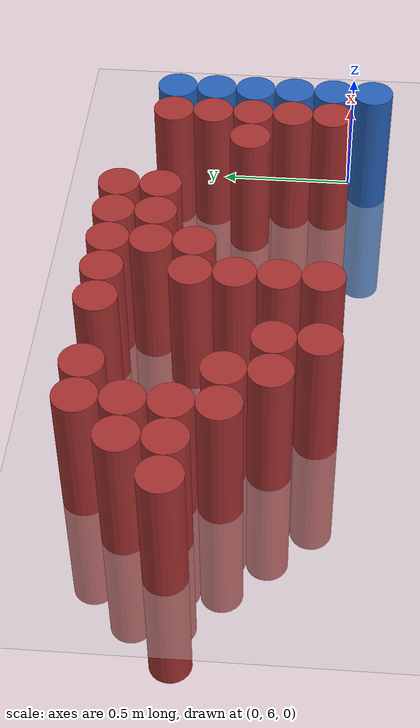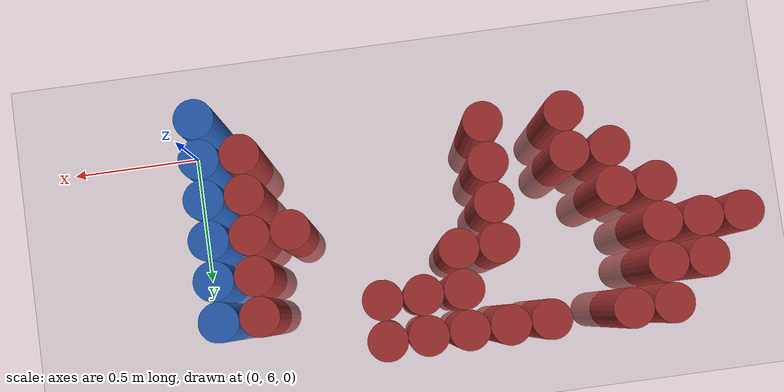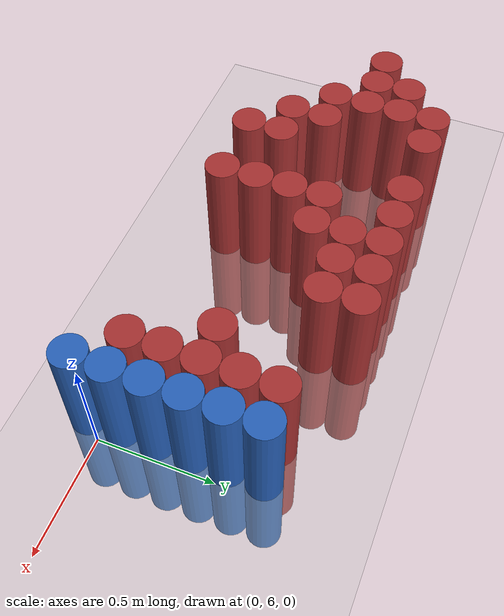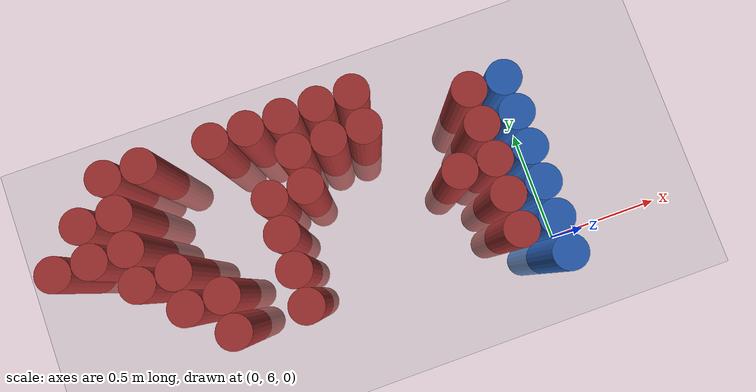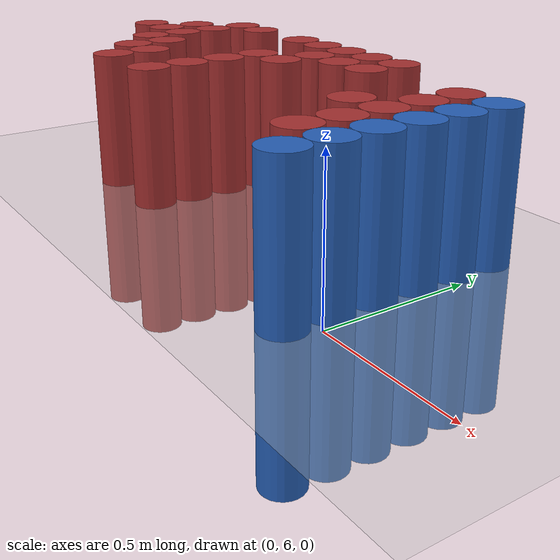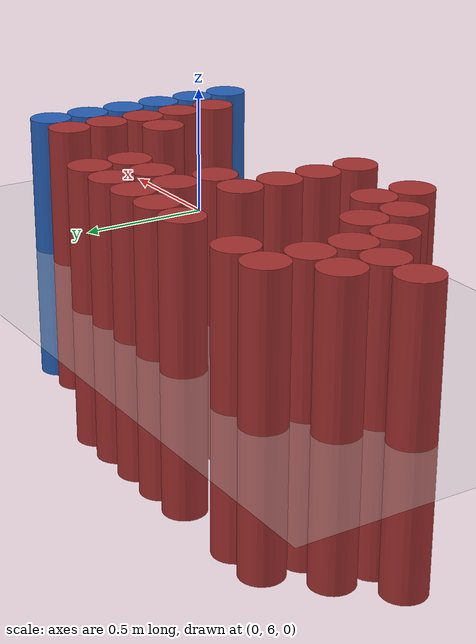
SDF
<sdf version="1.6">
 <world name="default">
  <model name="ground_plane">
   <static>1</static>
   <link name="link">
    <collision name="collision">
     <geometry><plane><normal>0 0 1</normal><size>100 100</size></plane></geometry>
     <surface><friction><ode><mu>100</mu><mu2>50</mu2></ode></friction></surface>
    </collision>
    <visual name="visual">
     <cast_shadows>0</cast_shadows>
     <geometry><plane><normal>0 0 1</normal><size>100 100</size></plane></geometry>
     <material>
      <script><uri>file://media/materials/scripts/gazebo.material</uri><name>Gazebo/Grey</name></script>
     </material>
    </visual>
   </link>
  </model>
  <model name="unit_cylinder_205">
   <static>1</static>
   <pose>-2.025000 6.525000 0.000000 0.000000 0.000000 0.000000</pose>
   <link name="link">
    <inertial>
     <mass>1</mass>
     <inertia><ixx>0.145833</ixx><ixy>0</ixy><ixz>0</ixz><iyy>0.145833</iyy><iyz>0</iyz><izz>0.125</izz></inertia>
    </inertial>
    <collision name="collision">
     <geometry><cylinder><radius>0.075000</radius><length>1</length></cylinder></geometry>
    </collision>
    <visual name="visual">
     <geometry><cylinder><radius>0.075000</radius><length>1</length></cylinder></geometry>
     <material>
      <ambient>0.648000 0.192000 0.192000 1</ambient>
      <diffuse>0.648000 0.192000 0.192000 1</diffuse>
     </material>
     <material>
      <script><name>Gazebo/Grey</name><uri>file://media/materials/scripts/gazebo.material</uri></script>
     </material>
    </visual>
    <sensor name="sensor_contact" type="contact"><contact><collision>collision</collision></contact></sensor>
   </link>
   <plugin filename="gz-sim-touchplugin-system" name="gz::sim::systems::TouchPlugin">
    <target>robot</target>
    <namespace>robot</namespace>
    <time>0.001</time>
    <enabled>true</enabled>
   </plugin>
  </model>
  <model name="unit_cylinder_208">
   <static>1</static>
   <pose>-1.875000 6.525000 0.000000 0.000000 0.000000 0.000000</pose>
   <link name="link">
    <inertial>
     <mass>1</mass>
     <inertia><ixx>0.145833</ixx><ixy>0</ixy><ixz>0</ixz><iyy>0.145833</iyy><iyz>0</iyz><izz>0.125</izz></inertia>
    </inertial>
    <collision name="collision">
     <geometry><cylinder><radius>0.075000</radius><length>1</length></cylinder></geometry>
    </collision>
    <visual name="visual">
     <geometry><cylinder><radius>0.075000</radius><length>1</length></cylinder></geometry>
     <material>
      <ambient>0.648000 0.192000 0.192000 1</ambient>
      <diffuse>0.648000 0.192000 0.192000 1</diffuse>
     </material>
     <material>
      <script><name>Gazebo/Grey</name><uri>file://media/materials/scripts/gazebo.material</uri></script>
     </material>
    </visual>
    <sensor name="sensor_contact" type="contact"><contact><collision>collision</collision></contact></sensor>
   </link>
   <plugin filename="gz-sim-touchplugin-system" name="gz::sim::systems::TouchPlugin">
    <target>robot</target>
    <namespace>robot</namespace>
    <time>0.001</time>
    <enabled>true</enabled>
   </plugin>
  </model>
  <model name="unit_cylinder_209">
   <static>1</static>
   <pose>-1.875000 6.675000 0.000000 0.000000 0.000000 0.000000</pose>
   <link name="link">
    <inertial>
     <mass>1</mass>
     <inertia><ixx>0.145833</ixx><ixy>0</ixy><ixz>0</ixz><iyy>0.145833</iyy><iyz>0</iyz><izz>0.125</izz></inertia>
    </inertial>
    <collision name="collision">
     <geometry><cylinder><radius>0.075000</radius><length>1</length></cylinder></geometry>
    </collision>
    <visual name="visual">
     <geometry><cylinder><radius>0.075000</radius><length>1</length></cylinder></geometry>
     <material>
      <ambient>0.648000 0.192000 0.192000 1</ambient>
      <diffuse>0.648000 0.192000 0.192000 1</diffuse>
     </material>
     <material>
      <script><name>Gazebo/Grey</name><uri>file://media/materials/scripts/gazebo.material</uri></script>
     </material>
    </visual>
    <sensor name="sensor_contact" type="contact"><contact><collision>collision</collision></contact></sensor>
   </link>
   <plugin filename="gz-sim-touchplugin-system" name="gz::sim::systems::TouchPlugin">
    <target>robot</target>
    <namespace>robot</namespace>
    <time>0.001</time>
    <enabled>true</enabled>
   </plugin>
  </model>
  <model name="unit_cylinder_211">
   <static>1</static>
   <pose>-1.725000 6.375000 0.000000 0.000000 0.000000 0.000000</pose>
   <link name="link">
    <inertial>
     <mass>1</mass>
     <inertia><ixx>0.145833</ixx><ixy>0</ixy><ixz>0</ixz><iyy>0.145833</iyy><iyz>0</iyz><izz>0.125</izz></inertia>
    </inertial>
    <collision name="collision">
     <geometry><cylinder><radius>0.075000</radius><length>1</length></cylinder></geometry>
    </collision>
    <visual name="visual">
     <geometry><cylinder><radius>0.075000</radius><length>1</length></cylinder></geometry>
     <material>
      <ambient>0.648000 0.192000 0.192000 1</ambient>
      <diffuse>0.648000 0.192000 0.192000 1</diffuse>
     </material>
     <material>
      <script><name>Gazebo/Grey</name><uri>file://media/materials/scripts/gazebo.material</uri></script>
     </material>
    </visual>
    <sensor name="sensor_contact" type="contact"><contact><collision>collision</collision></contact></sensor>
   </link>
   <plugin filename="gz-sim-touchplugin-system" name="gz::sim::systems::TouchPlugin">
    <target>robot</target>
    <namespace>robot</namespace>
    <time>0.001</time>
    <enabled>true</enabled>
   </plugin>
  </model>
  <model name="unit_cylinder_212">
   <static>1</static>
   <pose>-1.725000 6.525000 0.000000 0.000000 0.000000 0.000000</pose>
   <link name="link">
    <inertial>
     <mass>1</mass>
     <inertia><ixx>0.145833</ixx><ixy>0</ixy><ixz>0</ixz><iyy>0.145833</iyy><iyz>0</iyz><izz>0.125</izz></inertia>
    </inertial>
    <collision name="collision">
     <geometry><cylinder><radius>0.075000</radius><length>1</length></cylinder></geometry>
    </collision>
    <visual name="visual">
     <geometry><cylinder><radius>0.075000</radius><length>1</length></cylinder></geometry>
     <material>
      <ambient>0.648000 0.192000 0.192000 1</ambient>
      <diffuse>0.648000 0.192000 0.192000 1</diffuse>
     </material>
     <material>
      <script><name>Gazebo/Grey</name><uri>file://media/materials/scripts/gazebo.material</uri></script>
     </material>
    </visual>
    <sensor name="sensor_contact" type="contact"><contact><collision>collision</collision></contact></sensor>
   </link>
   <plugin filename="gz-sim-touchplugin-system" name="gz::sim::systems::TouchPlugin">
    <target>robot</target>
    <namespace>robot</namespace>
    <time>0.001</time>
    <enabled>true</enabled>
   </plugin>
  </model>
  <model name="unit_cylinder_213">
   <static>1</static>
   <pose>-1.725000 6.675000 0.000000 0.000000 0.000000 0.000000</pose>
   <link name="link">
    <inertial>
     <mass>1</mass>
     <inertia><ixx>0.145833</ixx><ixy>0</ixy><ixz>0</ixz><iyy>0.145833</iyy><iyz>0</iyz><izz>0.125</izz></inertia>
    </inertial>
    <collision name="collision">
     <geometry><cylinder><radius>0.075000</radius><length>1</length></cylinder></geometry>
    </collision>
    <visual name="visual">
     <geometry><cylinder><radius>0.075000</radius><length>1</length></cylinder></geometry>
     <material>
      <ambient>0.648000 0.192000 0.192000 1</ambient>
      <diffuse>0.648000 0.192000 0.192000 1</diffuse>
     </material>
     <material>
      <script><name>Gazebo/Grey</name><uri>file://media/materials/scripts/gazebo.material</uri></script>
     </material>
    </visual>
    <sensor name="sensor_contact" type="contact"><contact><collision>collision</collision></contact></sensor>
   </link>
   <plugin filename="gz-sim-touchplugin-system" name="gz::sim::systems::TouchPlugin">
    <target>robot</target>
    <namespace>robot</namespace>
    <time>0.001</time>
    <enabled>true</enabled>
   </plugin>
  </model>
  <model name="unit_cylinder_214">
   <static>1</static>
   <pose>-1.725000 6.825000 0.000000 0.000000 0.000000 0.000000</pose>
   <link name="link">
    <inertial>
     <mass>1</mass>
     <inertia><ixx>0.145833</ixx><ixy>0</ixy><ixz>0</ixz><iyy>0.145833</iyy><iyz>0</iyz><izz>0.125</izz></inertia>
    </inertial>
    <collision name="collision">
     <geometry><cylinder><radius>0.075000</radius><length>1</length></cylinder></geometry>
    </collision>
    <visual name="visual">
     <geometry><cylinder><radius>0.075000</radius><length>1</length></cylinder></geometry>
     <material>
      <ambient>0.648000 0.192000 0.192000 1</ambient>
      <diffuse>0.648000 0.192000 0.192000 1</diffuse>
     </material>
     <material>
      <script><name>Gazebo/Grey</name><uri>file://media/materials/scripts/gazebo.material</uri></script>
     </material>
    </visual>
    <sensor name="sensor_contact" type="contact"><contact><collision>collision</collision></contact></sensor>
   </link>
   <plugin filename="gz-sim-touchplugin-system" name="gz::sim::systems::TouchPlugin">
    <target>robot</target>
    <namespace>robot</namespace>
    <time>0.001</time>
    <enabled>true</enabled>
   </plugin>
  </model>
  <model name="unit_cylinder_220">
   <static>1</static>
   <pose>-1.575000 6.225000 0.000000 0.000000 0.000000 0.000000</pose>
   <link name="link">
    <inertial>
     <mass>1</mass>
     <inertia><ixx>0.145833</ixx><ixy>0</ixy><ixz>0</ixz><iyy>0.145833</iyy><iyz>0</iyz><izz>0.125</izz></inertia>
    </inertial>
    <collision name="collision">
     <geometry><cylinder><radius>0.075000</radius><length>1</length></cylinder></geometry>
    </collision>
    <visual name="visual">
     <geometry><cylinder><radius>0.075000</radius><length>1</length></cylinder></geometry>
     <material>
      <ambient>0.648000 0.192000 0.192000 1</ambient>
      <diffuse>0.648000 0.192000 0.192000 1</diffuse>
     </material>
     <material>
      <script><name>Gazebo/Grey</name><uri>file://media/materials/scripts/gazebo.material</uri></script>
     </material>
    </visual>
    <sensor name="sensor_contact" type="contact"><contact><collision>collision</collision></contact></sensor>
   </link>
   <plugin filename="gz-sim-touchplugin-system" name="gz::sim::systems::TouchPlugin">
    <target>robot</target>
    <namespace>robot</namespace>
    <time>0.001</time>
    <enabled>true</enabled>
   </plugin>
  </model>
  <model name="unit_cylinder_221">
   <static>1</static>
   <pose>-1.575000 6.375000 0.000000 0.000000 0.000000 0.000000</pose>
   <link name="link">
    <inertial>
     <mass>1</mass>
     <inertia><ixx>0.145833</ixx><ixy>0</ixy><ixz>0</ixz><iyy>0.145833</iyy><iyz>0</iyz><izz>0.125</izz></inertia>
    </inertial>
    <collision name="collision">
     <geometry><cylinder><radius>0.075000</radius><length>1</length></cylinder></geometry>
    </collision>
    <visual name="visual">
     <geometry><cylinder><radius>0.075000</radius><length>1</length></cylinder></geometry>
     <material>
      <ambient>0.648000 0.192000 0.192000 1</ambient>
      <diffuse>0.648000 0.192000 0.192000 1</diffuse>
     </material>
     <material>
      <script><name>Gazebo/Grey</name><uri>file://media/materials/scripts/gazebo.material</uri></script>
     </material>
    </visual>
    <sensor name="sensor_contact" type="contact"><contact><collision>collision</collision></contact></sensor>
   </link>
   <plugin filename="gz-sim-touchplugin-system" name="gz::sim::systems::TouchPlugin">
    <target>robot</target>
    <namespace>robot</namespace>
    <time>0.001</time>
    <enabled>true</enabled>
   </plugin>
  </model>
  <model name="unit_cylinder_222">
   <static>1</static>
   <pose>-1.575000 6.825000 0.000000 0.000000 0.000000 0.000000</pose>
   <link name="link">
    <inertial>
     <mass>1</mass>
     <inertia><ixx>0.145833</ixx><ixy>0</ixy><ixz>0</ixz><iyy>0.145833</iyy><iyz>0</iyz><izz>0.125</izz></inertia>
    </inertial>
    <collision name="collision">
     <geometry><cylinder><radius>0.075000</radius><length>1</length></cylinder></geometry>
    </collision>
    <visual name="visual">
     <geometry><cylinder><radius>0.075000</radius><length>1</length></cylinder></geometry>
     <material>
      <ambient>0.648000 0.192000 0.192000 1</ambient>
      <diffuse>0.648000 0.192000 0.192000 1</diffuse>
     </material>
     <material>
      <script><name>Gazebo/Grey</name><uri>file://media/materials/scripts/gazebo.material</uri></script>
     </material>
    </visual>
    <sensor name="sensor_contact" type="contact"><contact><collision>collision</collision></contact></sensor>
   </link>
   <plugin filename="gz-sim-touchplugin-system" name="gz::sim::systems::TouchPlugin">
    <target>robot</target>
    <namespace>robot</namespace>
    <time>0.001</time>
    <enabled>true</enabled>
   </plugin>
  </model>
  <model name="unit_cylinder_229">
   <static>1</static>
   <pose>-1.425000 6.075000 0.000000 0.000000 0.000000 0.000000</pose>
   <link name="link">
    <inertial>
     <mass>1</mass>
     <inertia><ixx>0.145833</ixx><ixy>0</ixy><ixz>0</ixz><iyy>0.145833</iyy><iyz>0</iyz><izz>0.125</izz></inertia>
    </inertial>
    <collision name="collision">
     <geometry><cylinder><radius>0.075000</radius><length>1</length></cylinder></geometry>
    </collision>
    <visual name="visual">
     <geometry><cylinder><radius>0.075000</radius><length>1</length></cylinder></geometry>
     <material>
      <ambient>0.648000 0.192000 0.192000 1</ambient>
      <diffuse>0.648000 0.192000 0.192000 1</diffuse>
     </material>
     <material>
      <script><name>Gazebo/Grey</name><uri>file://media/materials/scripts/gazebo.material</uri></script>
     </material>
    </visual>
    <sensor name="sensor_contact" type="contact"><contact><collision>collision</collision></contact></sensor>
   </link>
   <plugin filename="gz-sim-touchplugin-system" name="gz::sim::systems::TouchPlugin">
    <target>robot</target>
    <namespace>robot</namespace>
    <time>0.001</time>
    <enabled>true</enabled>
   </plugin>
  </model>
  <model name="unit_cylinder_230">
   <static>1</static>
   <pose>-1.425000 6.225000 0.000000 0.000000 0.000000 0.000000</pose>
   <link name="link">
    <inertial>
     <mass>1</mass>
     <inertia><ixx>0.145833</ixx><ixy>0</ixy><ixz>0</ixz><iyy>0.145833</iyy><iyz>0</iyz><izz>0.125</izz></inertia>
    </inertial>
    <collision name="collision">
     <geometry><cylinder><radius>0.075000</radius><length>1</length></cylinder></geometry>
    </collision>
    <visual name="visual">
     <geometry><cylinder><radius>0.075000</radius><length>1</length></cylinder></geometry>
     <material>
      <ambient>0.648000 0.192000 0.192000 1</ambient>
      <diffuse>0.648000 0.192000 0.192000 1</diffuse>
     </material>
     <material>
      <script><name>Gazebo/Grey</name><uri>file://media/materials/scripts/gazebo.material</uri></script>
     </material>
    </visual>
    <sensor name="sensor_contact" type="contact"><contact><collision>collision</collision></contact></sensor>
   </link>
   <plugin filename="gz-sim-touchplugin-system" name="gz::sim::systems::TouchPlugin">
    <target>robot</target>
    <namespace>robot</namespace>
    <time>0.001</time>
    <enabled>true</enabled>
   </plugin>
  </model>
  <model name="unit_cylinder_238">
   <static>1</static>
   <pose>-1.275000 6.825000 0.000000 0.000000 0.000000 0.000000</pose>
   <link name="link">
    <inertial>
     <mass>1</mass>
     <inertia><ixx>0.145833</ixx><ixy>0</ixy><ixz>0</ixz><iyy>0.145833</iyy><iyz>0</iyz><izz>0.125</izz></inertia>
    </inertial>
    <collision name="collision">
     <geometry><cylinder><radius>0.075000</radius><length>1</length></cylinder></geometry>
    </collision>
    <visual name="visual">
     <geometry><cylinder><radius>0.075000</radius><length>1</length></cylinder></geometry>
     <material>
      <ambient>0.648000 0.192000 0.192000 1</ambient>
      <diffuse>0.648000 0.192000 0.192000 1</diffuse>
     </material>
     <material>
      <script><name>Gazebo/Grey</name><uri>file://media/materials/scripts/gazebo.material</uri></script>
     </material>
    </visual>
    <sensor name="sensor_contact" type="contact"><contact><collision>collision</collision></contact></sensor>
   </link>
   <plugin filename="gz-sim-touchplugin-system" name="gz::sim::systems::TouchPlugin">
    <target>robot</target>
    <namespace>robot</namespace>
    <time>0.001</time>
    <enabled>true</enabled>
   </plugin>
  </model>
  <model name="unit_cylinder_245">
   <static>1</static>
   <pose>-1.125000 6.075000 0.000000 0.000000 0.000000 0.000000</pose>
   <link name="link">
    <inertial>
     <mass>1</mass>
     <inertia><ixx>0.145833</ixx><ixy>0</ixy><ixz>0</ixz><iyy>0.145833</iyy><iyz>0</iyz><izz>0.125</izz></inertia>
    </inertial>
    <collision name="collision">
     <geometry><cylinder><radius>0.075000</radius><length>1</length></cylinder></geometry>
    </collision>
    <visual name="visual">
     <geometry><cylinder><radius>0.075000</radius><length>1</length></cylinder></geometry>
     <material>
      <ambient>0.648000 0.192000 0.192000 1</ambient>
      <diffuse>0.648000 0.192000 0.192000 1</diffuse>
     </material>
     <material>
      <script><name>Gazebo/Grey</name><uri>file://media/materials/scripts/gazebo.material</uri></script>
     </material>
    </visual>
    <sensor name="sensor_contact" type="contact"><contact><collision>collision</collision></contact></sensor>
   </link>
   <plugin filename="gz-sim-touchplugin-system" name="gz::sim::systems::TouchPlugin">
    <target>robot</target>
    <namespace>robot</namespace>
    <time>0.001</time>
    <enabled>true</enabled>
   </plugin>
  </model>
  <model name="unit_cylinder_246">
   <static>1</static>
   <pose>-1.125000 6.225000 0.000000 0.000000 0.000000 0.000000</pose>
   <link name="link">
    <inertial>
     <mass>1</mass>
     <inertia><ixx>0.145833</ixx><ixy>0</ixy><ixz>0</ixz><iyy>0.145833</iyy><iyz>0</iyz><izz>0.125</izz></inertia>
    </inertial>
    <collision name="collision">
     <geometry><cylinder><radius>0.075000</radius><length>1</length></cylinder></geometry>
    </collision>
    <visual name="visual">
     <geometry><cylinder><radius>0.075000</radius><length>1</length></cylinder></geometry>
     <material>
      <ambient>0.648000 0.192000 0.192000 1</ambient>
      <diffuse>0.648000 0.192000 0.192000 1</diffuse>
     </material>
     <material>
      <script><name>Gazebo/Grey</name><uri>file://media/materials/scripts/gazebo.material</uri></script>
     </material>
    </visual>
    <sensor name="sensor_contact" type="contact"><contact><collision>collision</collision></contact></sensor>
   </link>
   <plugin filename="gz-sim-touchplugin-system" name="gz::sim::systems::TouchPlugin">
    <target>robot</target>
    <namespace>robot</namespace>
    <time>0.001</time>
    <enabled>true</enabled>
   </plugin>
  </model>
  <model name="unit_cylinder_247">
   <static>1</static>
   <pose>-1.125000 6.375000 0.000000 0.000000 0.000000 0.000000</pose>
   <link name="link">
    <inertial>
     <mass>1</mass>
     <inertia><ixx>0.145833</ixx><ixy>0</ixy><ixz>0</ixz><iyy>0.145833</iyy><iyz>0</iyz><izz>0.125</izz></inertia>
    </inertial>
    <collision name="collision">
     <geometry><cylinder><radius>0.075000</radius><length>1</length></cylinder></geometry>
    </collision>
    <visual name="visual">
     <geometry><cylinder><radius>0.075000</radius><length>1</length></cylinder></geometry>
     <material>
      <ambient>0.648000 0.192000 0.192000 1</ambient>
      <diffuse>0.648000 0.192000 0.192000 1</diffuse>
     </material>
     <material>
      <script><name>Gazebo/Grey</name><uri>file://media/materials/scripts/gazebo.material</uri></script>
     </material>
    </visual>
    <sensor name="sensor_contact" type="contact"><contact><collision>collision</collision></contact></sensor>
   </link>
   <plugin filename="gz-sim-touchplugin-system" name="gz::sim::systems::TouchPlugin">
    <target>robot</target>
    <namespace>robot</namespace>
    <time>0.001</time>
    <enabled>true</enabled>
   </plugin>
  </model>
  <model name="unit_cylinder_248">
   <static>1</static>
   <pose>-1.125000 6.525000 0.000000 0.000000 0.000000 0.000000</pose>
   <link name="link">
    <inertial>
     <mass>1</mass>
     <inertia><ixx>0.145833</ixx><ixy>0</ixy><ixz>0</ixz><iyy>0.145833</iyy><iyz>0</iyz><izz>0.125</izz></inertia>
    </inertial>
    <collision name="collision">
     <geometry><cylinder><radius>0.075000</radius><length>1</length></cylinder></geometry>
    </collision>
    <visual name="visual">
     <geometry><cylinder><radius>0.075000</radius><length>1</length></cylinder></geometry>
     <material>
      <ambient>0.648000 0.192000 0.192000 1</ambient>
      <diffuse>0.648000 0.192000 0.192000 1</diffuse>
     </material>
     <material>
      <script><name>Gazebo/Grey</name><uri>file://media/materials/scripts/gazebo.material</uri></script>
     </material>
    </visual>
    <sensor name="sensor_contact" type="contact"><contact><collision>collision</collision></contact></sensor>
   </link>
   <plugin filename="gz-sim-touchplugin-system" name="gz::sim::systems::TouchPlugin">
    <target>robot</target>
    <namespace>robot</namespace>
    <time>0.001</time>
    <enabled>true</enabled>
   </plugin>
  </model>
  <model name="unit_cylinder_249">
   <static>1</static>
   <pose>-1.125000 6.825000 0.000000 0.000000 0.000000 0.000000</pose>
   <link name="link">
    <inertial>
     <mass>1</mass>
     <inertia><ixx>0.145833</ixx><ixy>0</ixy><ixz>0</ixz><iyy>0.145833</iyy><iyz>0</iyz><izz>0.125</izz></inertia>
    </inertial>
    <collision name="collision">
     <geometry><cylinder><radius>0.075000</radius><length>1</length></cylinder></geometry>
    </collision>
    <visual name="visual">
     <geometry><cylinder><radius>0.075000</radius><length>1</length></cylinder></geometry>
     <material>
      <ambient>0.648000 0.192000 0.192000 1</ambient>
      <diffuse>0.648000 0.192000 0.192000 1</diffuse>
     </material>
     <material>
      <script><name>Gazebo/Grey</name><uri>file://media/materials/scripts/gazebo.material</uri></script>
     </material>
    </visual>
    <sensor name="sensor_contact" type="contact"><contact><collision>collision</collision></contact></sensor>
   </link>
   <plugin filename="gz-sim-touchplugin-system" name="gz::sim::systems::TouchPlugin">
    <target>robot</target>
    <namespace>robot</namespace>
    <time>0.001</time>
    <enabled>true</enabled>
   </plugin>
  </model>
  <model name="unit_cylinder_254">
   <static>1</static>
   <pose>-0.975000 6.525000 0.000000 0.000000 0.000000 0.000000</pose>
   <link name="link">
    <inertial>
     <mass>1</mass>
     <inertia><ixx>0.145833</ixx><ixy>0</ixy><ixz>0</ixz><iyy>0.145833</iyy><iyz>0</iyz><izz>0.125</izz></inertia>
    </inertial>
    <collision name="collision">
     <geometry><cylinder><radius>0.075000</radius><length>1</length></cylinder></geometry>
    </collision>
    <visual name="visual">
     <geometry><cylinder><radius>0.075000</radius><length>1</length></cylinder></geometry>
     <material>
      <ambient>0.648000 0.192000 0.192000 1</ambient>
      <diffuse>0.648000 0.192000 0.192000 1</diffuse>
     </material>
     <material>
      <script><name>Gazebo/Grey</name><uri>file://media/materials/scripts/gazebo.material</uri></script>
     </material>
    </visual>
    <sensor name="sensor_contact" type="contact"><contact><collision>collision</collision></contact></sensor>
   </link>
   <plugin filename="gz-sim-touchplugin-system" name="gz::sim::systems::TouchPlugin">
    <target>robot</target>
    <namespace>robot</namespace>
    <time>0.001</time>
    <enabled>true</enabled>
   </plugin>
  </model>
  <model name="unit_cylinder_255">
   <static>1</static>
   <pose>-0.975000 6.675000 0.000000 0.000000 0.000000 0.000000</pose>
   <link name="link">
    <inertial>
     <mass>1</mass>
     <inertia><ixx>0.145833</ixx><ixy>0</ixy><ixz>0</ixz><iyy>0.145833</iyy><iyz>0</iyz><izz>0.125</izz></inertia>
    </inertial>
    <collision name="collision">
     <geometry><cylinder><radius>0.075000</radius><length>1</length></cylinder></geometry>
    </collision>
    <visual name="visual">
     <geometry><cylinder><radius>0.075000</radius><length>1</length></cylinder></geometry>
     <material>
      <ambient>0.648000 0.192000 0.192000 1</ambient>
      <diffuse>0.648000 0.192000 0.192000 1</diffuse>
     </material>
     <material>
      <script><name>Gazebo/Grey</name><uri>file://media/materials/scripts/gazebo.material</uri></script>
     </material>
    </visual>
    <sensor name="sensor_contact" type="contact"><contact><collision>collision</collision></contact></sensor>
   </link>
   <plugin filename="gz-sim-touchplugin-system" name="gz::sim::systems::TouchPlugin">
    <target>robot</target>
    <namespace>robot</namespace>
    <time>0.001</time>
    <enabled>true</enabled>
   </plugin>
  </model>
  <model name="unit_cylinder_256">
   <static>1</static>
   <pose>-0.975000 6.825000 0.000000 0.000000 0.000000 0.000000</pose>
   <link name="link">
    <inertial>
     <mass>1</mass>
     <inertia><ixx>0.145833</ixx><ixy>0</ixy><ixz>0</ixz><iyy>0.145833</iyy><iyz>0</iyz><izz>0.125</izz></inertia>
    </inertial>
    <collision name="collision">
     <geometry><cylinder><radius>0.075000</radius><length>1</length></cylinder></geometry>
    </collision>
    <visual name="visual">
     <geometry><cylinder><radius>0.075000</radius><length>1</length></cylinder></geometry>
     <material>
      <ambient>0.648000 0.192000 0.192000 1</ambient>
      <diffuse>0.648000 0.192000 0.192000 1</diffuse>
     </material>
     <material>
      <script><name>Gazebo/Grey</name><uri>file://media/materials/scripts/gazebo.material</uri></script>
     </material>
    </visual>
    <sensor name="sensor_contact" type="contact"><contact><collision>collision</collision></contact></sensor>
   </link>
   <plugin filename="gz-sim-touchplugin-system" name="gz::sim::systems::TouchPlugin">
    <target>robot</target>
    <namespace>robot</namespace>
    <time>0.001</time>
    <enabled>true</enabled>
   </plugin>
  </model>
  <model name="unit_cylinder_262">
   <static>1</static>
   <pose>-0.825000 6.675000 0.000000 0.000000 0.000000 0.000000</pose>
   <link name="link">
    <inertial>
     <mass>1</mass>
     <inertia><ixx>0.145833</ixx><ixy>0</ixy><ixz>0</ixz><iyy>0.145833</iyy><iyz>0</iyz><izz>0.125</izz></inertia>
    </inertial>
    <collision name="collision">
     <geometry><cylinder><radius>0.075000</radius><length>1</length></cylinder></geometry>
    </collision>
    <visual name="visual">
     <geometry><cylinder><radius>0.075000</radius><length>1</length></cylinder></geometry>
     <material>
      <ambient>0.648000 0.192000 0.192000 1</ambient>
      <diffuse>0.648000 0.192000 0.192000 1</diffuse>
     </material>
     <material>
      <script><name>Gazebo/Grey</name><uri>file://media/materials/scripts/gazebo.material</uri></script>
     </material>
    </visual>
    <sensor name="sensor_contact" type="contact"><contact><collision>collision</collision></contact></sensor>
   </link>
   <plugin filename="gz-sim-touchplugin-system" name="gz::sim::systems::TouchPlugin">
    <target>robot</target>
    <namespace>robot</namespace>
    <time>0.001</time>
    <enabled>true</enabled>
   </plugin>
  </model>
  <model name="unit_cylinder_263">
   <static>1</static>
   <pose>-0.825000 6.825000 0.000000 0.000000 0.000000 0.000000</pose>
   <link name="link">
    <inertial>
     <mass>1</mass>
     <inertia><ixx>0.145833</ixx><ixy>0</ixy><ixz>0</ixz><iyy>0.145833</iyy><iyz>0</iyz><izz>0.125</izz></inertia>
    </inertial>
    <collision name="collision">
     <geometry><cylinder><radius>0.075000</radius><length>1</length></cylinder></geometry>
    </collision>
    <visual name="visual">
     <geometry><cylinder><radius>0.075000</radius><length>1</length></cylinder></geometry>
     <material>
      <ambient>0.648000 0.192000 0.192000 1</ambient>
      <diffuse>0.648000 0.192000 0.192000 1</diffuse>
     </material>
     <material>
      <script><name>Gazebo/Grey</name><uri>file://media/materials/scripts/gazebo.material</uri></script>
     </material>
    </visual>
    <sensor name="sensor_contact" type="contact"><contact><collision>collision</collision></contact></sensor>
   </link>
   <plugin filename="gz-sim-touchplugin-system" name="gz::sim::systems::TouchPlugin">
    <target>robot</target>
    <namespace>robot</namespace>
    <time>0.001</time>
    <enabled>true</enabled>
   </plugin>
  </model>
  <model name="unit_cylinder_266">
   <static>1</static>
   <pose>-0.675000 6.675000 0.000000 0.000000 0.000000 0.000000</pose>
   <link name="link">
    <inertial>
     <mass>1</mass>
     <inertia><ixx>0.145833</ixx><ixy>0</ixy><ixz>0</ixz><iyy>0.145833</iyy><iyz>0</iyz><izz>0.125</izz></inertia>
    </inertial>
    <collision name="collision">
     <geometry><cylinder><radius>0.075000</radius><length>1</length></cylinder></geometry>
    </collision>
    <visual name="visual">
     <geometry><cylinder><radius>0.075000</radius><length>1</length></cylinder></geometry>
     <material>
      <ambient>0.648000 0.192000 0.192000 1</ambient>
      <diffuse>0.648000 0.192000 0.192000 1</diffuse>
     </material>
     <material>
      <script><name>Gazebo/Grey</name><uri>file://media/materials/scripts/gazebo.material</uri></script>
     </material>
    </visual>
    <sensor name="sensor_contact" type="contact"><contact><collision>collision</collision></contact></sensor>
   </link>
   <plugin filename="gz-sim-touchplugin-system" name="gz::sim::systems::TouchPlugin">
    <target>robot</target>
    <namespace>robot</namespace>
    <time>0.001</time>
    <enabled>true</enabled>
   </plugin>
  </model>
  <model name="unit_cylinder_267">
   <static>1</static>
   <pose>-0.675000 6.825000 0.000000 0.000000 0.000000 0.000000</pose>
   <link name="link">
    <inertial>
     <mass>1</mass>
     <inertia><ixx>0.145833</ixx><ixy>0</ixy><ixz>0</ixz><iyy>0.145833</iyy><iyz>0</iyz><izz>0.125</izz></inertia>
    </inertial>
    <collision name="collision">
     <geometry><cylinder><radius>0.075000</radius><length>1</length></cylinder></geometry>
    </collision>
    <visual name="visual">
     <geometry><cylinder><radius>0.075000</radius><length>1</length></cylinder></geometry>
     <material>
      <ambient>0.648000 0.192000 0.192000 1</ambient>
      <diffuse>0.648000 0.192000 0.192000 1</diffuse>
     </material>
     <material>
      <script><name>Gazebo/Grey</name><uri>file://media/materials/scripts/gazebo.material</uri></script>
     </material>
    </visual>
    <sensor name="sensor_contact" type="contact"><contact><collision>collision</collision></contact></sensor>
   </link>
   <plugin filename="gz-sim-touchplugin-system" name="gz::sim::systems::TouchPlugin">
    <target>robot</target>
    <namespace>robot</namespace>
    <time>0.001</time>
    <enabled>true</enabled>
   </plugin>
  </model>
  <model name="unit_cylinder_278">
   <static>1</static>
   <pose>-0.375000 6.375000 0.000000 0.000000 0.000000 0.000000</pose>
   <link name="link">
    <inertial>
     <mass>1</mass>
     <inertia><ixx>0.145833</ixx><ixy>0</ixy><ixz>0</ixz><iyy>0.145833</iyy><iyz>0</iyz><izz>0.125</izz></inertia>
    </inertial>
    <collision name="collision">
     <geometry><cylinder><radius>0.075000</radius><length>1</length></cylinder></geometry>
    </collision>
    <visual name="visual">
     <geometry><cylinder><radius>0.075000</radius><length>1</length></cylinder></geometry>
     <material>
      <ambient>0.648000 0.192000 0.192000 1</ambient>
      <diffuse>0.648000 0.192000 0.192000 1</diffuse>
     </material>
     <material>
      <script><name>Gazebo/Grey</name><uri>file://media/materials/scripts/gazebo.material</uri></script>
     </material>
    </visual>
    <sensor name="sensor_contact" type="contact"><contact><collision>collision</collision></contact></sensor>
   </link>
   <plugin filename="gz-sim-touchplugin-system" name="gz::sim::systems::TouchPlugin">
    <target>robot</target>
    <namespace>robot</namespace>
    <time>0.001</time>
    <enabled>true</enabled>
   </plugin>
  </model>
  <model name="unit_cylinder_288">
   <static>1</static>
   <pose>-0.225000 6.075000 0.000000 0.000000 0.000000 0.000000</pose>
   <link name="link">
    <inertial>
     <mass>1</mass>
     <inertia><ixx>0.145833</ixx><ixy>0</ixy><ixz>0</ixz><iyy>0.145833</iyy><iyz>0</iyz><izz>0.125</izz></inertia>
    </inertial>
    <collision name="collision">
     <geometry><cylinder><radius>0.075000</radius><length>1</length></cylinder></geometry>
    </collision>
    <visual name="visual">
     <geometry><cylinder><radius>0.075000</radius><length>1</length></cylinder></geometry>
     <material>
      <ambient>0.648000 0.192000 0.192000 1</ambient>
      <diffuse>0.648000 0.192000 0.192000 1</diffuse>
     </material>
     <material>
      <script><name>Gazebo/Grey</name><uri>file://media/materials/scripts/gazebo.material</uri></script>
     </material>
    </visual>
    <sensor name="sensor_contact" type="contact"><contact><collision>collision</collision></contact></sensor>
   </link>
   <plugin filename="gz-sim-touchplugin-system" name="gz::sim::systems::TouchPlugin">
    <target>robot</target>
    <namespace>robot</namespace>
    <time>0.001</time>
    <enabled>true</enabled>
   </plugin>
  </model>
  <model name="unit_cylinder_289">
   <static>1</static>
   <pose>-0.225000 6.225000 0.000000 0.000000 0.000000 0.000000</pose>
   <link name="link">
    <inertial>
     <mass>1</mass>
     <inertia><ixx>0.145833</ixx><ixy>0</ixy><ixz>0</ixz><iyy>0.145833</iyy><iyz>0</iyz><izz>0.125</izz></inertia>
    </inertial>
    <collision name="collision">
     <geometry><cylinder><radius>0.075000</radius><length>1</length></cylinder></geometry>
    </collision>
    <visual name="visual">
     <geometry><cylinder><radius>0.075000</radius><length>1</length></cylinder></geometry>
     <material>
      <ambient>0.648000 0.192000 0.192000 1</ambient>
      <diffuse>0.648000 0.192000 0.192000 1</diffuse>
     </material>
     <material>
      <script><name>Gazebo/Grey</name><uri>file://media/materials/scripts/gazebo.material</uri></script>
     </material>
    </visual>
    <sensor name="sensor_contact" type="contact"><contact><collision>collision</collision></contact></sensor>
   </link>
   <plugin filename="gz-sim-touchplugin-system" name="gz::sim::systems::TouchPlugin">
    <target>robot</target>
    <namespace>robot</namespace>
    <time>0.001</time>
    <enabled>true</enabled>
   </plugin>
  </model>
  <model name="unit_cylinder_290">
   <static>1</static>
   <pose>-0.225000 6.375000 0.000000 0.000000 0.000000 0.000000</pose>
   <link name="link">
    <inertial>
     <mass>1</mass>
     <inertia><ixx>0.145833</ixx><ixy>0</ixy><ixz>0</ixz><iyy>0.145833</iyy><iyz>0</iyz><izz>0.125</izz></inertia>
    </inertial>
    <collision name="collision">
     <geometry><cylinder><radius>0.075000</radius><length>1</length></cylinder></geometry>
    </collision>
    <visual name="visual">
     <geometry><cylinder><radius>0.075000</radius><length>1</length></cylinder></geometry>
     <material>
      <ambient>0.648000 0.192000 0.192000 1</ambient>
      <diffuse>0.648000 0.192000 0.192000 1</diffuse>
     </material>
     <material>
      <script><name>Gazebo/Grey</name><uri>file://media/materials/scripts/gazebo.material</uri></script>
     </material>
    </visual>
    <sensor name="sensor_contact" type="contact"><contact><collision>collision</collision></contact></sensor>
   </link>
   <plugin filename="gz-sim-touchplugin-system" name="gz::sim::systems::TouchPlugin">
    <target>robot</target>
    <namespace>robot</namespace>
    <time>0.001</time>
    <enabled>true</enabled>
   </plugin>
  </model>
  <model name="unit_cylinder_291">
   <static>1</static>
   <pose>-0.225000 6.525000 0.000000 0.000000 0.000000 0.000000</pose>
   <link name="link">
    <inertial>
     <mass>1</mass>
     <inertia><ixx>0.145833</ixx><ixy>0</ixy><ixz>0</ixz><iyy>0.145833</iyy><iyz>0</iyz><izz>0.125</izz></inertia>
    </inertial>
    <collision name="collision">
     <geometry><cylinder><radius>0.075000</radius><length>1</length></cylinder></geometry>
    </collision>
    <visual name="visual">
     <geometry><cylinder><radius>0.075000</radius><length>1</length></cylinder></geometry>
     <material>
      <ambient>0.648000 0.192000 0.192000 1</ambient>
      <diffuse>0.648000 0.192000 0.192000 1</diffuse>
     </material>
     <material>
      <script><name>Gazebo/Grey</name><uri>file://media/materials/scripts/gazebo.material</uri></script>
     </material>
    </visual>
    <sensor name="sensor_contact" type="contact"><contact><collision>collision</collision></contact></sensor>
   </link>
   <plugin filename="gz-sim-touchplugin-system" name="gz::sim::systems::TouchPlugin">
    <target>robot</target>
    <namespace>robot</namespace>
    <time>0.001</time>
    <enabled>true</enabled>
   </plugin>
  </model>
  <model name="unit_cylinder_292">
   <static>1</static>
   <pose>-0.225000 6.675000 0.000000 0.000000 0.000000 0.000000</pose>
   <link name="link">
    <inertial>
     <mass>1</mass>
     <inertia><ixx>0.145833</ixx><ixy>0</ixy><ixz>0</ixz><iyy>0.145833</iyy><iyz>0</iyz><izz>0.125</izz></inertia>
    </inertial>
    <collision name="collision">
     <geometry><cylinder><radius>0.075000</radius><length>1</length></cylinder></geometry>
    </collision>
    <visual name="visual">
     <geometry><cylinder><radius>0.075000</radius><length>1</length></cylinder></geometry>
     <material>
      <ambient>0.648000 0.192000 0.192000 1</ambient>
      <diffuse>0.648000 0.192000 0.192000 1</diffuse>
     </material>
     <material>
      <script><name>Gazebo/Grey</name><uri>file://media/materials/scripts/gazebo.material</uri></script>
     </material>
    </visual>
    <sensor name="sensor_contact" type="contact"><contact><collision>collision</collision></contact></sensor>
   </link>
   <plugin filename="gz-sim-touchplugin-system" name="gz::sim::systems::TouchPlugin">
    <target>robot</target>
    <namespace>robot</namespace>
    <time>0.001</time>
    <enabled>true</enabled>
   </plugin>
  </model>
  <model name="unit_cylinder_310">
   <static>1</static>
   <pose>-0.075000 5.925000 0.000000 0.000000 0.000000 0.000000</pose>
   <link name="link">
    <inertial>
     <mass>1</mass>
     <inertia><ixx>0.145833</ixx><ixy>0</ixy><ixz>0</ixz><iyy>0.145833</iyy><iyz>0</iyz><izz>0.125</izz></inertia>
    </inertial>
    <collision name="collision">
     <geometry><cylinder><radius>0.075000</radius><length>1</length></cylinder></geometry>
    </collision>
    <visual name="visual">
     <geometry><cylinder><radius>0.075000</radius><length>1</length></cylinder></geometry>
     <material>
      <ambient>0.152000 0.379000 0.720000 1</ambient>
      <diffuse>0.152000 0.379000 0.720000 1</diffuse>
     </material>
     <material>
      <script><name>Gazebo/Grey</name><uri>file://media/materials/scripts/gazebo.material</uri></script>
     </material>
    </visual>
    <sensor name="sensor_contact" type="contact"><contact><collision>collision</collision></contact></sensor>
   </link>
   <plugin filename="gz-sim-touchplugin-system" name="gz::sim::systems::TouchPlugin">
    <target>robot</target>
    <namespace>robot</namespace>
    <time>0.001</time>
    <enabled>true</enabled>
   </plugin>
  </model>
  <model name="unit_cylinder_311">
   <static>1</static>
   <pose>-0.075000 6.075000 0.000000 0.000000 0.000000 0.000000</pose>
   <link name="link">
    <inertial>
     <mass>1</mass>
     <inertia><ixx>0.145833</ixx><ixy>0</ixy><ixz>0</ixz><iyy>0.145833</iyy><iyz>0</iyz><izz>0.125</izz></inertia>
    </inertial>
    <collision name="collision">
     <geometry><cylinder><radius>0.075000</radius><length>1</length></cylinder></geometry>
    </collision>
    <visual name="visual">
     <geometry><cylinder><radius>0.075000</radius><length>1</length></cylinder></geometry>
     <material>
      <ambient>0.152000 0.379000 0.720000 1</ambient>
      <diffuse>0.152000 0.379000 0.720000 1</diffuse>
     </material>
     <material>
      <script><name>Gazebo/Grey</name><uri>file://media/materials/scripts/gazebo.material</uri></script>
     </material>
    </visual>
    <sensor name="sensor_contact" type="contact"><contact><collision>collision</collision></contact></sensor>
   </link>
   <plugin filename="gz-sim-touchplugin-system" name="gz::sim::systems::TouchPlugin">
    <target>robot</target>
    <namespace>robot</namespace>
    <time>0.001</time>
    <enabled>true</enabled>
   </plugin>
  </model>
  <model name="unit_cylinder_312">
   <static>1</static>
   <pose>-0.075000 6.225000 0.000000 0.000000 0.000000 0.000000</pose>
   <link name="link">
    <inertial>
     <mass>1</mass>
     <inertia><ixx>0.145833</ixx><ixy>0</ixy><ixz>0</ixz><iyy>0.145833</iyy><iyz>0</iyz><izz>0.125</izz></inertia>
    </inertial>
    <collision name="collision">
     <geometry><cylinder><radius>0.075000</radius><length>1</length></cylinder></geometry>
    </collision>
    <visual name="visual">
     <geometry><cylinder><radius>0.075000</radius><length>1</length></cylinder></geometry>
     <material>
      <ambient>0.152000 0.379000 0.720000 1</ambient>
      <diffuse>0.152000 0.379000 0.720000 1</diffuse>
     </material>
     <material>
      <script><name>Gazebo/Grey</name><uri>file://media/materials/scripts/gazebo.material</uri></script>
     </material>
    </visual>
    <sensor name="sensor_contact" type="contact"><contact><collision>collision</collision></contact></sensor>
   </link>
   <plugin filename="gz-sim-touchplugin-system" name="gz::sim::systems::TouchPlugin">
    <target>robot</target>
    <namespace>robot</namespace>
    <time>0.001</time>
    <enabled>true</enabled>
   </plugin>
  </model>
  <model name="unit_cylinder_313">
   <static>1</static>
   <pose>-0.075000 6.375000 0.000000 0.000000 0.000000 0.000000</pose>
   <link name="link">
    <inertial>
     <mass>1</mass>
     <inertia><ixx>0.145833</ixx><ixy>0</ixy><ixz>0</ixz><iyy>0.145833</iyy><iyz>0</iyz><izz>0.125</izz></inertia>
    </inertial>
    <collision name="collision">
     <geometry><cylinder><radius>0.075000</radius><length>1</length></cylinder></geometry>
    </collision>
    <visual name="visual">
     <geometry><cylinder><radius>0.075000</radius><length>1</length></cylinder></geometry>
     <material>
      <ambient>0.152000 0.379000 0.720000 1</ambient>
      <diffuse>0.152000 0.379000 0.720000 1</diffuse>
     </material>
     <material>
      <script><name>Gazebo/Grey</name><uri>file://media/materials/scripts/gazebo.material</uri></script>
     </material>
    </visual>
    <sensor name="sensor_contact" type="contact"><contact><collision>collision</collision></contact></sensor>
   </link>
   <plugin filename="gz-sim-touchplugin-system" name="gz::sim::systems::TouchPlugin">
    <target>robot</target>
    <namespace>robot</namespace>
    <time>0.001</time>
    <enabled>true</enabled>
   </plugin>
  </model>
  <model name="unit_cylinder_314">
   <static>1</static>
   <pose>-0.075000 6.525000 0.000000 0.000000 0.000000 0.000000</pose>
   <link name="link">
    <inertial>
     <mass>1</mass>
     <inertia><ixx>0.145833</ixx><ixy>0</ixy><ixz>0</ixz><iyy>0.145833</iyy><iyz>0</iyz><izz>0.125</izz></inertia>
    </inertial>
    <collision name="collision">
     <geometry><cylinder><radius>0.075000</radius><length>1</length></cylinder></geometry>
    </collision>
    <visual name="visual">
     <geometry><cylinder><radius>0.075000</radius><length>1</length></cylinder></geometry>
     <material>
      <ambient>0.152000 0.379000 0.720000 1</ambient>
      <diffuse>0.152000 0.379000 0.720000 1</diffuse>
     </material>
     <material>
      <script><name>Gazebo/Grey</name><uri>file://media/materials/scripts/gazebo.material</uri></script>
     </material>
    </visual>
    <sensor name="sensor_contact" type="contact"><contact><collision>collision</collision></contact></sensor>
   </link>
   <plugin filename="gz-sim-touchplugin-system" name="gz::sim::systems::TouchPlugin">
    <target>robot</target>
    <namespace>robot</namespace>
    <time>0.001</time>
    <enabled>true</enabled>
   </plugin>
  </model>
  <model name="unit_cylinder_315">
   <static>1</static>
   <pose>-0.075000 6.675000 0.000000 0.000000 0.000000 0.000000</pose>
   <link name="link">
    <inertial>
     <mass>1</mass>
     <inertia><ixx>0.145833</ixx><ixy>0</ixy><ixz>0</ixz><iyy>0.145833</iyy><iyz>0</iyz><izz>0.125</izz></inertia>
    </inertial>
    <collision name="collision">
     <geometry><cylinder><radius>0.075000</radius><length>1</length></cylinder></geometry>
    </collision>
    <visual name="visual">
     <geometry><cylinder><radius>0.075000</radius><length>1</length></cylinder></geometry>
     <material>
      <ambient>0.152000 0.379000 0.720000 1</ambient>
      <diffuse>0.152000 0.379000 0.720000 1</diffuse>
     </material>
     <material>
      <script><name>Gazebo/Grey</name><uri>file://media/materials/scripts/gazebo.material</uri></script>
     </material>
    </visual>
    <sensor name="sensor_contact" type="contact"><contact><collision>collision</collision></contact></sensor>
   </link>
   <plugin filename="gz-sim-touchplugin-system" name="gz::sim::systems::TouchPlugin">
    <target>robot</target>
    <namespace>robot</namespace>
    <time>0.001</time>
    <enabled>true</enabled>
   </plugin>
  </model>
 </world>
</sdf>
